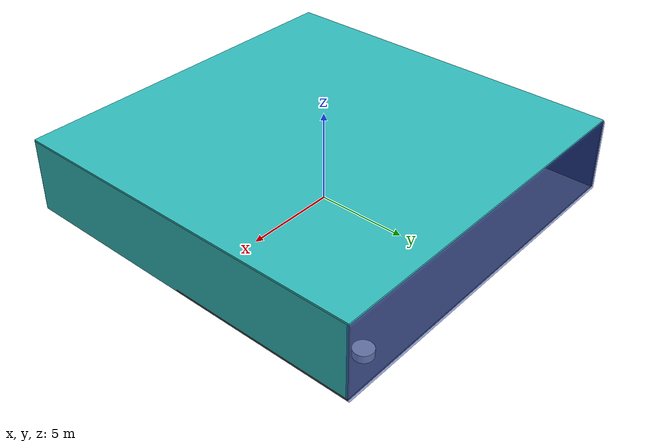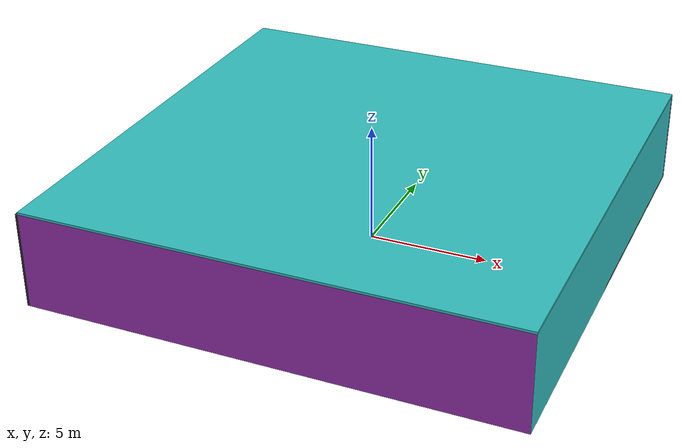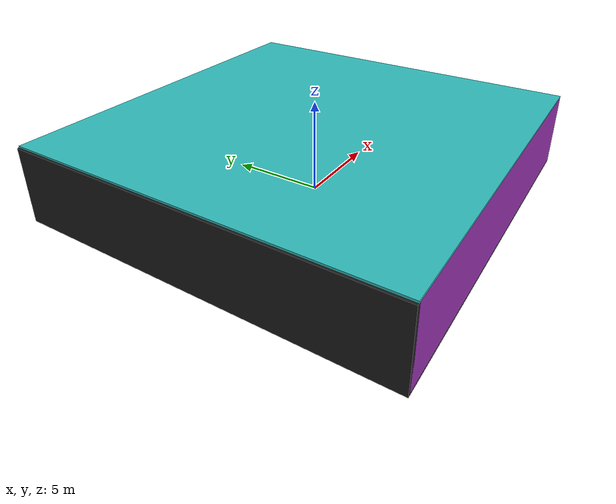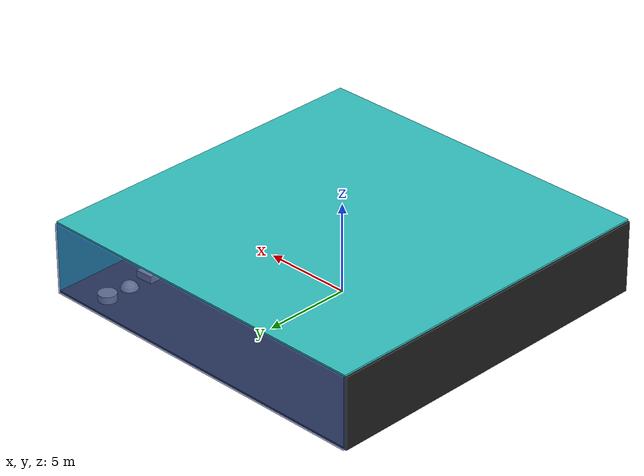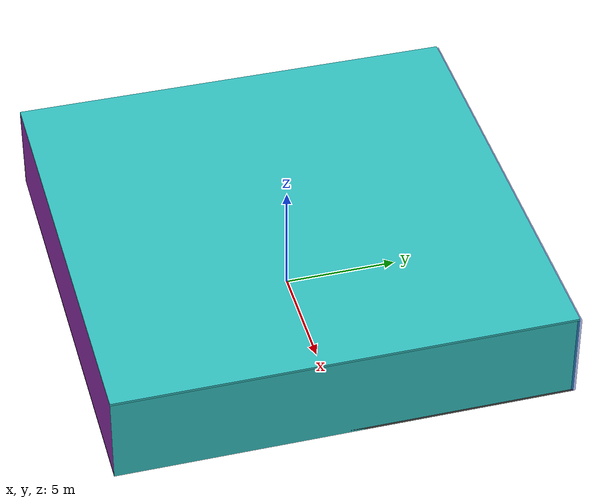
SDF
<sdf version="1.4">
 <world name="default">
  <physics type="ode">
   <max_step_size>0.001</max_step_size>
   <real_time_factor>1</real_time_factor>
   <real_time_update_rate>1000</real_time_update_rate>
   <gravity>0 0 -9.8</gravity>
  </physics>
  <scene><ambient>0.4 0.4 0.4 1</ambient><background>0.7 0.7 0.7 1</background><shadows>1</shadows></scene>
  <model name="Surrounding">
   <static>1</static>
   <link name="Ceiling">
    <collision name="Ceiling_Collision"><geometry><box><size>20 20 0.1</size></box></geometry></collision>
    <visual name="Ceiling_Visual">
     <geometry><box><size>20 20 0.1</size></box></geometry>
     <material>
      <script><uri>file://media/materials/scripts/gazebo.material</uri><name>Gazebo/TurquoiseGlow</name></script>
     </material>
    </visual>
    <pose>0 0 4.05 0 0 0</pose>
   </link>
   <link name="Wall_South">
    <collision name="Wall_South_Collision">
     <geometry><box><size>20 0 4</size></box></geometry>
     <pose>0 0 2 0 -0 0</pose>
    </collision>
    <visual name="Wall_South_Visual">
     <pose>0 0 2 0 -0 0</pose>
     <geometry><box><size>20 0 4</size></box></geometry>
     <material>
      <script><uri>file://media/materials/scripts/gazebo.material</uri><name>Gazebo/PurpleGlow</name></script>
     </material>
    </visual>
    <velocity_decay><linear>0</linear><angular>0</angular></velocity_decay>
    <pose>0 -10 0 0 -0 0</pose>
   </link>
   <link name="Wall_East">
    <collision name="Wall_21_Collision">
     <geometry><box><size>20 0 4</size></box></geometry>
     <pose>0 0 2 0 -0 0</pose>
    </collision>
    <visual name="Wall_21_Visual">
     <pose>0 0 2 0 -0 0</pose>
     <geometry><box><size>20 0 4</size></box></geometry>
     <material>
      <script>
       <uri>file://media/materials/scripts/gazebo.material</uri>
       <name>Gazebo/TurquoiseGlowOutline</name>
      </script>
     </material>
    </visual>
    <velocity_decay><linear>0</linear><angular>0</angular></velocity_decay>
    <pose>10 0 0 0 -0 1.5708</pose>
   </link>
   <link name="Wall_North">
    <collision name="Wall_22_Collision">
     <geometry><box><size>20 0.2 4</size></box></geometry>
     <pose>0 0 2 0 -0 0</pose>
    </collision>
    <visual name="Wall_22_Visual">
     <pose>0 0 2 0 -0 0</pose>
     <geometry><box><size>20 0.2 4</size></box></geometry>
     <material>
      <script><uri>file://media/materials/scripts/gazebo.material</uri><name>Gazebo/BlueTransparent</name></script>
     </material>
    </visual>
    <velocity_decay><linear>0</linear><angular>0</angular></velocity_decay>
    <pose>0 10 0 0 -0 0</pose>
   </link>
   <link name="Wall_West">
    <collision name="Wall_23_Collision">
     <geometry><box><size>20 0.2 4</size></box></geometry>
     <pose>0 0 2 0 -0 0</pose>
    </collision>
    <visual name="Wall_23_Visual">
     <pose>0 0 2 0 -0 0</pose>
     <geometry><box><size>20 0.2 4</size></box></geometry>
     <material>
      <script><uri>file://media/materials/scripts/gazebo.material</uri><name>Gazebo/FlatBlack</name></script>
     </material>
    </visual>
    <velocity_decay><linear>0</linear><angular>0</angular></velocity_decay>
    <pose>-10 0 0 0 0 -1.5708</pose>
   </link>
   <link name="Ground_link">
    <collision name="collision">
     <pose>0 0 .05 0 -0 0</pose>
     <geometry><box><size>20 20 0.1</size></box></geometry>
    </collision>
    <visual name="visual">
     <pose>0 0 .05 0 -0 0</pose>
     <geometry><box><size>20 20 0.1</size></box></geometry>
     <material>
      <script><uri>file://media/materials/scripts/gazebo.material</uri><name>Gazebo/Road</name></script>
     </material>
    </visual>
   </link>
   <static>1</static>
  </model>
  <spherical_coordinates>
   <surface_model>EARTH_WGS84</surface_model>
   <latitude_deg>0</latitude_deg>
   <longitude_deg>0</longitude_deg>
   <elevation>0</elevation>
   <heading_deg>0</heading_deg>
  </spherical_coordinates>
  <light name="lightball_0" type="diffuse">
   <diffuse>0.8 0.8 0.8 1</diffuse>
   <specular>0.2 0.2 0.2 1</specular>
   <attenuation>
    <range>100</range>
    <constant>0.7</constant>
    <linear>0.01</linear>
    <quadratic>0.001</quadratic>
   </attenuation>
   <direction>-0.5 0.1 -0.9</direction>
   <pose>8.48309178255 5.42516896492 3.50064326116 0 0 0</pose>
  </light>
  <light name="lightball_1" type="diffuse">
   <diffuse>0.8 0.8 0.8 1</diffuse>
   <specular>0.2 0.2 0.2 1</specular>
   <attenuation>
    <range>100</range>
    <constant>0.7</constant>
    <linear>0.01</linear>
    <quadratic>0.001</quadratic>
   </attenuation>
   <direction>-0.5 0.1 -0.9</direction>
   <pose>4.67195860373 1.00006020109 2.62623878506 0 0 0</pose>
  </light>
  <light name="lightball_2" type="diffuse">
   <diffuse>0.8 0.8 0.8 1</diffuse>
   <specular>0.2 0.2 0.2 1</specular>
   <attenuation>
    <range>100</range>
    <constant>0.7</constant>
    <linear>0.01</linear>
    <quadratic>0.001</quadratic>
   </attenuation>
   <direction>-0.5 0.1 -0.9</direction>
   <pose>-6.31693514645 1.04864176602 0.536822425966 0 0 0</pose>
  </light>
  <light name="lightball_3" type="diffuse">
   <diffuse>0.8 0.8 0.8 1</diffuse>
   <specular>0.2 0.2 0.2 1</specular>
   <attenuation>
    <range>100</range>
    <constant>0.7</constant>
    <linear>0.01</linear>
    <quadratic>0.001</quadratic>
   </attenuation>
   <direction>-0.5 0.1 -0.9</direction>
   <pose>-5.89852960135 0.108583848214 3.09426218759 0 0 0</pose>
  </light>
  <light name="lightball_4" type="diffuse">
   <diffuse>0.8 0.8 0.8 1</diffuse>
   <specular>0.2 0.2 0.2 1</specular>
   <attenuation>
    <range>100</range>
    <constant>0.7</constant>
    <linear>0.01</linear>
    <quadratic>0.001</quadratic>
   </attenuation>
   <direction>-0.5 0.1 -0.9</direction>
   <pose>-5.25062139955 -9.75474101329 1.85379799558 0 0 0</pose>
  </light>
  <light name="lightball_5" type="diffuse">
   <diffuse>0.8 0.8 0.8 1</diffuse>
   <specular>0.2 0.2 0.2 1</specular>
   <attenuation>
    <range>100</range>
    <constant>0.7</constant>
    <linear>0.01</linear>
    <quadratic>0.001</quadratic>
   </attenuation>
   <direction>-0.5 0.1 -0.9</direction>
   <pose>-6.74100322924 -6.30014493277 2.53784569447 0 0 0</pose>
  </light>
  <light name="lightball_6" type="diffuse">
   <diffuse>0.8 0.8 0.8 1</diffuse>
   <specular>0.2 0.2 0.2 1</specular>
   <attenuation>
    <range>100</range>
    <constant>0.7</constant>
    <linear>0.01</linear>
    <quadratic>0.001</quadratic>
   </attenuation>
   <direction>-0.5 0.1 -0.9</direction>
   <pose>-7.92253510088 -8.37258829225 3.88717316354 0 0 0</pose>
  </light>
  <light name="lightball_7" type="diffuse">
   <diffuse>0.8 0.8 0.8 1</diffuse>
   <specular>0.2 0.2 0.2 1</specular>
   <attenuation>
    <range>100</range>
    <constant>0.7</constant>
    <linear>0.01</linear>
    <quadratic>0.001</quadratic>
   </attenuation>
   <direction>-0.5 0.1 -0.9</direction>
   <pose>-0.299267726634 6.45717311962 1.79543955174 0 0 0</pose>
  </light>
  <light name="lightball_8" type="diffuse">
   <diffuse>0.8 0.8 0.8 1</diffuse>
   <specular>0.2 0.2 0.2 1</specular>
   <attenuation>
    <range>100</range>
    <constant>0.7</constant>
    <linear>0.01</linear>
    <quadratic>0.001</quadratic>
   </attenuation>
   <direction>-0.5 0.1 -0.9</direction>
   <pose>1.36648434889 -3.30833479538 3.25246699131 0 0 0</pose>
  </light>
  <include>
   <uri>model://robocup_3Dsim_goal</uri>
   <pose>-7.05634965944 0.646661670349 0 0 0 0.378204882584</pose>
  </include>
  <include><uri>model://cabinet</uri><pose>-4.31284593058 -6.86919103156 0 0 0 0.0465421084673</pose></include>
  <include><uri>model://table</uri><pose>-1.27287671589 -1.08927253181 0 0 0 0.611190029502</pose></include>
  <include>
   <uri>model://construction_cone</uri>
   <pose>-1.13159935046 2.30904193372 0 0 0 1.55581063708</pose>
  </include>
  <include><uri>model://cabinet</uri><pose>0.856979679598 5.25151962574 0 0 0 1.42717075483</pose></include>
  <include>
   <uri>model://textured_shapes</uri>
   <pose>7.710091469 7.39574079006 0 0 0 0.0329306290382</pose>
  </include>
 </world>
</sdf>

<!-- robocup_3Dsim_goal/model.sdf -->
<sdf version="1.5">
  <model name="robocup_3d_goal">
    <static>true</static>
    <link name="left_post">
      <pose>0 1.05 0.45 0 0 0</pose>
      <collision name="collision">
        <geometry>
          <cylinder>
            <radius>0.05</radius>
            <length>0.9</length>
          </cylinder>
        </geometry>
      </collision>
      <visual name="visual">
        <geometry>
          <cylinder>
            <radius>0.05</radius>
            <length>0.9</length>
          </cylinder>
        </geometry>
        <material>
          <script>
            <uri>file://media/materials/scripts/gazebo.material</uri>
            <name>Gazebo/ZincYellow</name>
          </script>
        </material>
      </visual>
    </link>
    <link name="left_support_horiz_lower">
      <pose>0.30 1.05 0.01 0 0 0</pose>
      <collision name="collision">
        <geometry>
          <box>
            <size>0.50 0.02 0.02</size>
          </box>
        </geometry>
      </collision>
      <visual name="visual">
        <geometry>
          <box>
            <size>0.50 0.02 0.02</size>
          </box>
        </geometry>
        <material>
          <script>
            <uri>file://media/materials/scripts/gazebo.material</uri>
            <name>Gazebo/White</name>
          </script>
        </material>
      </visual>
    </link>
    <link name="left_support_horiz_upper">
      <pose>0.30 1.05 0.79 0 0 0</pose>
      <collision name="collision">
        <geometry>
          <box>
            <size>0.50 0.02 0.02</size>
          </box>
        </geometry>
      </collision>
      <visual name="visual">
        <geometry>
          <box>
            <size>0.50 0.02 0.02</size>
          </box>
        </geometry>
        <material>
          <script>
            <uri>file://media/materials/scripts/gazebo.material</uri>
            <name>Gazebo/White</name>
          </script>
        </material>
      </visual>
    </link>
    <link name="left_support_vertical">
      <pose>0.56 1.05 0.4 0 1.5708 0</pose>
      <collision name="collision">
        <geometry>
          <box>
            <size>0.80 0.02 0.02</size>
          </box>
        </geometry>
      </collision>
      <visual name="visual">
        <geometry>
          <box>
            <size>0.80 0.02 0.02</size>
          </box>
        </geometry>
        <material>
          <script>
            <uri>file://media/materials/scripts/gazebo.material</uri>
            <name>Gazebo/White</name>
          </script>
        </material>
      </visual>
    </link>
    <link name="right_support_horiz_lower">
      <pose>0.30 -1.05 0.01 0 0 0</pose>
      <collision name="collision">
        <geometry>
          <box>
            <size>0.50 0.02 0.02</size>
          </box>
        </geometry>
      </collision>
      <visual name="visual">
        <geometry>
          <box>
            <size>0.50 0.02 0.02</size>
          </box>
        </geometry>
        <material>
          <script>
            <uri>file://media/materials/scripts/gazebo.material</uri>
            <name>Gazebo/White</name>
          </script>
        </material>
      </visual>
    </link>
    <link name="right_support_horiz_upper">
      <pose>0.30 -1.05 0.79 0 0 0</pose>
      <collision name="collision">
        <geometry>
          <box>
            <size>0.50 0.02 0.02</size>
          </box>
        </geometry>
      </collision>
      <visual name="visual">
        <geometry>
          <box>
            <size>0.50 0.02 0.02</size>
          </box>
        </geometry>
        <material>
          <script>
            <uri>file://media/materials/scripts/gazebo.material</uri>
            <name>Gazebo/White</name>
          </script>
        </material>
      </visual>
    </link>
    <link name="right_support_vertical">
      <pose>0.56 -1.05 0.4 0 1.5708 0</pose>
      <collision name="collision">
        <geometry>
          <box>
            <size>0.80 0.02 0.02</size>
          </box>
        </geometry>
      </collision>
      <visual name="visual">
        <geometry>
          <box>
            <size>0.80 0.02 0.02</size>
          </box>
        </geometry>
        <material>
          <script>
            <uri>file://media/materials/scripts/gazebo.material</uri>
            <name>Gazebo/White</name>
          </script>
        </material>
      </visual>
    </link>
    <link name="center_support_horiz_lower">
      <pose>0.56 0 0.01 0 1.5708 0</pose>
      <collision name="collision">
        <geometry>
          <box>
            <size>0.02 2.08 0.02</size>
          </box>
        </geometry>
      </collision>
      <visual name="visual">
        <geometry>
          <box>
            <size>0.02 2.08 0.02</size>
          </box>
        </geometry>
        <material>
          <script>
            <uri>file://media/materials/scripts/gazebo.material</uri>
            <name>Gazebo/White</name>
          </script>
        </material>
      </visual>
    </link>
    <link name="center_support_horiz_upper">
      <pose>0.56 0 0.79 0 1.5708 0</pose>
      <collision name="collision">
        <geometry>
          <box>
            <size>0.02 2.08 0.02</size>
          </box>
        </geometry>
      </collision>
      <visual name="visual">
        <geometry>
          <box>
            <size>0.02 2.08 0.02</size>
          </box>
        </geometry>
        <material>
          <script>
            <uri>file://media/materials/scripts/gazebo.material</uri>
            <name>Gazebo/White</name>
          </script>
        </material>
      </visual>
    </link>
    <link name="right_post">
      <pose>0 -1.05 0.45 0 0 0</pose>
      <collision name="collision">
        <geometry>
          <cylinder>
            <radius>0.05</radius>
            <length>0.9</length>
          </cylinder>
        </geometry>
      </collision>
      <visual name="visual">
        <geometry>
          <cylinder>
            <radius>0.05</radius>
            <length>0.9</length>
          </cylinder>
        </geometry>
        <material>
          <script>
            <uri>file://media/materials/scripts/gazebo.material</uri>
            <name>Gazebo/ZincYellow</name>
          </script>
        </material>
      </visual>
    </link>
    <link name="crossbar">
      <pose>0 0 0.85 1.57 1.57 0</pose>
      <collision name="collision">
        <geometry>
          <cylinder>
            <radius>0.05</radius>
            <length>2.0</length>
          </cylinder>
        </geometry>
      </collision>
      <visual name="visual">
        <geometry>
          <cylinder>
            <radius>0.05</radius>
            <length>2.0</length>
          </cylinder>
        </geometry>
        <material>
          <script>
            <uri>file://media/materials/scripts/gazebo.material</uri>
            <name>Gazebo/ZincYellow</name>
          </script>
        </material>
      </visual>
    </link>
    <link name="center_net">
      <pose>0.56 0 0.40 0 0 0</pose>
      <collision name="collision">
        <geometry>
          <box>
            <size>0.01 2.1 0.80</size>
          </box>
        </geometry>
      </collision>
      <visual name="visual">
        <geometry>
          <box>
            <size>0.01 2.1 0.80</size>
          </box>
        </geometry>
        <material>
          <script>
            <uri>model://../model_source/models/robocup09_spl_field/materials/scripts/</uri>
            <uri>model://../model_source/models/robocup09_spl_field/materials/textures/</uri>
            <name>RoboCup/Net</name>
          </script>
        </material>
      </visual>
    </link>
    <link name="left_net">
      <pose>0.30 1.05 0.40 0 0 0</pose>
      <collision name="collision">
        <geometry>
          <box>
            <size>0.50 0.01 0.76</size>
          </box>
        </geometry>
      </collision>
      <visual name="visual">
        <geometry>
          <box>
            <size>0.50 0.01 0.76</size>
          </box>
        </geometry>
        <material>
          <script>
            <uri>model://../model_source/models/robocup09_spl_field/materials/scripts/</uri>
            <uri>model://../model_source/models/robocup09_spl_field/materials/textures/</uri>
            <name>RoboCup/Net</name>
          </script>
        </material>
      </visual>
    </link>
    <link name="right_net">
      <pose>0.30 -1.05 0.40 0 0 0</pose>
      <collision name="collision">
        <geometry>
          <box>
            <size>0.50 0.01 0.76</size>
          </box>
        </geometry>
      </collision>
      <visual name="visual">
        <geometry>
          <box>
            <size>0.50 0.01 0.76</size>
          </box>
        </geometry>
        <material>
          <script>
            <uri>model://../model_source/models/robocup09_spl_field/materials/scripts/</uri>
            <uri>model://../model_source/models/robocup09_spl_field/materials/textures/</uri>
            <name>RoboCup/Net</name>
          </script>
        </material>
      </visual>
    </link>
  </model>
</sdf>

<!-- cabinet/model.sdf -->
<sdf version="1.5">
  <model name="cabinet">
    <static>true</static>
    <link name="cabinet_bottom_plate">
      <inertial>
        <pose>0 0 -1 0 0 0</pose>
        <inertia>
          <ixx>2.050000</ixx>
          <ixy>0</ixy>
          <ixz>0</ixz>
          <iyy>2.050000</iyy>
          <iyz>0</iyz>
          <izz>2.050000</izz>
        </inertia>
        <mass>25.000000</mass>
      </inertial>
      <collision name="cabinet_bottom_plate_geom">
        <pose>0 0 0.010000 0 0 0</pose>
        <geometry>
          <box>
            <size>0.450000 0.450000 0.020000</size>
          </box>
        </geometry>
      </collision>
      <visual name="cabinet_bottom_plate_geom_visual">
        <pose>0 0 0.010000 0 0 0</pose>
        <geometry>
          <box>
            <size>0.450000 0.450000 0.020000</size>
          </box>
        </geometry>
        <material>
          <script>
            <uri>model://media/materials/scripts/gazebo.material</uri>
            <name>Gazebo/Wood</name>
          </script>
        </material>
      </visual>
      <collision name="cabinet_bottom_plate_geom_cabinet_back_plate">
        <pose>0.235000 0 0.510000 0 0 0</pose>
        <geometry>
          <box>
            <size>0.020000 0.450000 1.020000</size>
          </box>
        </geometry>
      </collision>
      <visual name="cabinet_bottom_plate_geom_cabinet_back_plate_visual">
        <pose>0.235000 0 0.510000 0 0 0</pose>
        <geometry>
          <box>
            <size>0.020000 0.450000 1.020000</size>
          </box>
        </geometry>
        <material>
          <script>
            <uri>model://media/materials/scripts/gazebo.material</uri>
            <name>Gazebo/Wood</name>
          </script>
        </material>
      </visual>
      <collision name="cabinet_bottom_plate_geom_cabinet_left_plate">
        <pose>0 0.235000 0.510000 0 0 0</pose>
        <geometry>
          <box>
            <size>0.450000 0.020000 1.020000</size>
          </box>
        </geometry>
      </collision>
      <visual name="cabinet_bottom_plate_geom_cabinet_left_plate_visual">
        <pose>0 0.235000 0.510000 0 0 0</pose>
        <geometry>
          <box>
            <size>0.450000 0.020000 1.020000</size>
          </box>
        </geometry>
        <material>
          <script>
            <uri>model://media/materials/scripts/gazebo.material</uri>
            <name>Gazebo/Wood</name>
          </script>
        </material>
      </visual>
      <collision name="cabinet_bottom_plate_geom_cabinet_middle_plate">
        <pose>0 0 0.510000 0 0 0</pose>
        <geometry>
          <box>
            <size>0.450000 0.450000 0.020000</size>
          </box>
        </geometry>
      </collision>
      <visual name="cabinet_bottom_plate_geom_cabinet_middle_plate_visual">
        <pose>0 0 0.510000 0 0 0</pose>
        <geometry>
          <box>
            <size>0.450000 0.450000 0.020000</size>
          </box>
        </geometry>
        <material>
          <script>
            <uri>model://media/materials/scripts/gazebo.material</uri>
            <name>Gazebo/Wood</name>
          </script>
        </material>
      </visual>
      <collision name="cabinet_bottom_plate_geom_cabinet_right_plate">
        <pose>0 -0.235000 0.510000 0 0 0</pose>
        <geometry>
          <box>
            <size>0.450000 0.020000 1.020000</size>
          </box>
        </geometry>
      </collision>
      <visual name="cabinet_bottom_plate_geom_cabinet_right_plate_visual">
        <pose>0 -0.235000 0.510000 0 0 0</pose>
        <geometry>
          <box>
            <size>0.450000 0.020000 1.020000</size>
          </box>
        </geometry>
        <material>
          <script>
            <uri>model://media/materials/scripts/gazebo.material</uri>
            <name>Gazebo/Wood</name>
          </script>
        </material>
      </visual>
      <collision name="cabinet_bottom_plate_geom_cabinet_top_plate">
        <pose>0 0 1.010000 0 0 0</pose>
        <geometry>
          <box>
            <size>0.450000 0.450000 0.020000</size>
          </box>
        </geometry>
      </collision>
      <visual name="cabinet_bottom_plate_geom_cabinet_top_plate_visual">
        <pose>0 0 1.010000 0 0 0</pose>
        <geometry>
          <box>
            <size>0.450000 0.450000 0.020000</size>
          </box>
        </geometry>
        <material>
          <script>
            <uri>model://media/materials/scripts/gazebo.material</uri>
            <name>Gazebo/Wood</name>
          </script>
        </material>
      </visual>
    </link>
  </model>
</sdf>

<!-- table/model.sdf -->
<sdf version="1.5">
  <model name="table">
    <static>true</static>
    <link name="link">
      <collision name="surface">
        <pose>0 0 1.0 0 0 0</pose>
        <geometry>
          <box>
            <size>1.5 0.8 0.03</size>
          </box>
        </geometry>
        <surface>
          <friction>
            <ode>
              <mu>0.6</mu>
              <mu2>0.6</mu2>
            </ode>
          </friction>
        </surface>
      </collision>
      <visual name="visual1">
        <pose>0 0 1.0 0 0 0</pose>
        <geometry>
          <box>
            <size>1.5 0.8 0.03</size>
          </box>
        </geometry>
        <material>
          <script>
            <uri>model://media/materials/scripts/gazebo.material</uri>
            <name>Gazebo/Wood</name>
          </script>
        </material>
      </visual>
      <collision name="front_left_leg">
        <pose>0.68 0.38 0.5 0 0 0</pose>
        <geometry>
          <cylinder>
            <radius>0.02</radius>
            <length>1.0</length>
          </cylinder>
        </geometry>
      </collision>
      <visual name="front_left_leg">
        <pose>0.68 0.38 0.5 0 0 0</pose>
        <geometry>
          <cylinder>
            <radius>0.02</radius>
            <length>1.0</length>
          </cylinder>
        </geometry>
        <material>
          <script>
            <uri>model://media/materials/scripts/gazebo.material</uri>
            <name>Gazebo/Grey</name>
          </script>
        </material>
      </visual>
      <collision name="front_right_leg">
        <pose>0.68 -0.38 0.5 0 0 0</pose>
        <geometry>
          <cylinder>
            <radius>0.02</radius>
            <length>1.0</length>
          </cylinder>
        </geometry>
      </collision>
      <visual name="front_right_leg">
        <pose>0.68 -0.38 0.5 0 0 0</pose>
        <geometry>
          <cylinder>
            <radius>0.02</radius>
            <length>1.0</length>
          </cylinder>
        </geometry>
        <material>
          <script>
            <uri>model://media/materials/scripts/gazebo.material</uri>
            <name>Gazebo/Grey</name>
          </script>
        </material>
      </visual>
      <collision name="back_right_leg">
        <pose>-0.68 -0.38 0.5 0 0 0</pose>
        <geometry>
          <cylinder>
            <radius>0.02</radius>
            <length>1.0</length>
          </cylinder>
        </geometry>
      </collision>
      <visual name="back_right_leg">
        <pose>-0.68 -0.38 0.5 0 0 0</pose>
        <geometry>
          <cylinder>
            <radius>0.02</radius>
            <length>1.0</length>
          </cylinder>
        </geometry>
        <material>
          <script>
            <uri>model://media/materials/scripts/gazebo.material</uri>
            <name>Gazebo/Grey</name>
          </script>
        </material>
      </visual>
      <collision name="back_left_leg">
        <pose>-0.68 0.38 0.5 0 0 0</pose>
        <geometry>
          <cylinder>
            <radius>0.02</radius>
            <length>1.0</length>
          </cylinder>
        </geometry>
      </collision>
      <visual name="back_left_leg">
        <pose>-0.68 0.38 0.5 0 0 0</pose>
        <geometry>
          <cylinder>
            <radius>0.02</radius>
            <length>1.0</length>
          </cylinder>
        </geometry>
        <material>
          <script>
            <uri>model://media/materials/scripts/gazebo.material</uri>
            <name>Gazebo/Grey</name>
          </script>
        </material>
      </visual>
    </link>
  </model>
</sdf>

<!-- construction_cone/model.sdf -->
<sdf version="1.5">
  <model name="Construction Cone">
    <link name="link">
      <collision name="collision">
        <geometry>
          <mesh>
            <scale>10 10 10</scale>
            <uri>file://isr-testbed/construction_cone/meshes/construction_cone.dae</uri>
          </mesh>
        </geometry>
      </collision>
      <visual name="visual">
        <geometry>
          <mesh>
            <scale>10 10 10</scale>
            <uri>file://isr-testbed/construction_cone/meshes/construction_cone.dae</uri>
          </mesh>
        </geometry>
      </visual>
    </link>
  </model>
</sdf>

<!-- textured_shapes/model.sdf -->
<sdf version="1.6">
  <model name="textured_shapes">
    <pose>0 0 0.5 0 0 0</pose>
    <link name="box">
      <pose>0 -1.5 0 0 0 0</pose>
      <collision name="collision">
        <geometry>
          <box>
            <size>1 1 1</size>
          </box>
        </geometry>
      </collision>
      <visual name="visual">
        <geometry>
          <box>
            <size>1 1 1</size>
          </box>
        </geometry>
        <material>
          <script>
            <uri>model://../model_source/models/textured_shapes/materials/scripts</uri>
            <uri>model://../model_source/models/textured_shapes/materials/textures</uri>
            <name>TexturedShape/Squares</name>
          </script>
        </material>
      </visual>
    </link>
    <link name="sphere">
      <collision name="collision">
        <geometry>
          <sphere>
            <radius>0.5</radius>
          </sphere>
        </geometry>
      </collision>
      <visual name="visual">
        <geometry>
          <sphere>
            <radius>0.5</radius>
          </sphere>
        </geometry>
        <material>
          <script>
            <uri>model://../model_source/models/textured_shapes/materials/scripts</uri>
            <uri>model://../model_source/models/textured_shapes/materials/textures</uri>
            <name>TexturedShape/Squares</name>
          </script>
        </material>
      </visual>
    </link>
    <link name="cylinder">
      <pose>0 1.5 0 0 0 0</pose>
      <collision name="collision">
        <geometry>
          <cylinder>
            <radius>0.5</radius>
            <length>1</length>
          </cylinder>
        </geometry>
      </collision>
      <visual name="visual">
        <geometry>
          <cylinder>
            <radius>0.5</radius>
            <length>1</length>
          </cylinder>
        </geometry>
        <material>
          <script>
            <uri>model://../model_source/models/textured_shapes/materials/scripts</uri>
            <uri>model://../model_source/models/textured_shapes/materials/textures</uri>
            <name>TexturedShape/Squares</name>
          </script>
        </material>
      </visual>
    </link>
  </model>
</sdf>
